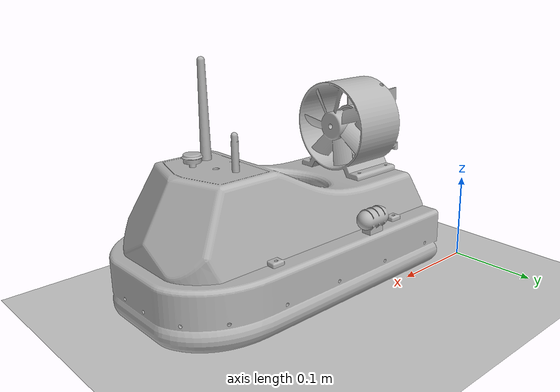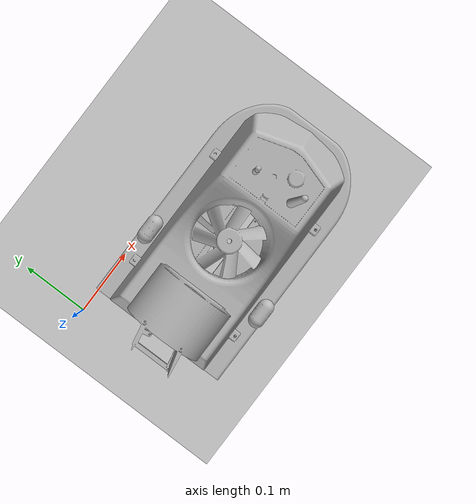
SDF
<sdf version='1.7'>
    <world name='default'>
        <light name='sun' type='directional'>
        <cast_shadows>1</cast_shadows>
        <pose>0 0 10 0 -0 0</pose>
        <diffuse>0.8 0.8 0.8 1</diffuse>
        <specular>0.2 0.2 0.2 1</specular>
        <attenuation>
            <range>1000</range>
            <constant>0.9</constant>
            <linear>0.01</linear>
            <quadratic>0.001</quadratic>
        </attenuation>
        <direction>-0.5 0.1 -0.9</direction>
        <spot>
            <inner_angle>0</inner_angle>
            <outer_angle>0</outer_angle>
            <falloff>0</falloff>
        </spot>
        </light>

        <model name='ground_plane'>
        <static>1</static>
        <link name='link'>
            <collision name='collision'>
            <geometry>
                <plane>
                <normal>0 0 1</normal>
                <size>100 100</size>
                </plane>
            </geometry>
            <surface>
                <contact>
                <collide_bitmask>65535</collide_bitmask>
                <ode/>
                </contact>
                <friction>
                <ode>
                    <mu>100</mu>
                    <mu2>50</mu2>
                </ode>
                <torsional>
                    <ode/>
                </torsional>
                </friction>
                <bounce/>
            </surface>
            <max_contacts>10</max_contacts>
            </collision>
            <visual name='visual'>
            <cast_shadows>0</cast_shadows>
            <geometry>
                <plane>
                <normal>0 0 1</normal>
                <size>100 100</size>
                </plane>
            </geometry>
            <material>
                <script>
                <uri>file://media/materials/scripts/gazebo.material</uri>
                <name>Gazebo/Grey</name>
                </script>
            </material>
            </visual>
            <self_collide>0</self_collide>
            <enable_wind>0</enable_wind>
            <kinematic>0</kinematic>
        </link>
        </model>

        <include>
            <uri>model://hovercraft</uri>
            <!-- Pose ( x y z r p y ) -->
            <pose frame=''>0 0 0 0 0 0</pose>
        </include>
    </world>
</sdf>

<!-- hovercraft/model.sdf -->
<sdf version='1.6'>
  <model name='hovercraft'>
    <link name='link_0'>
      <inertial>
        <mass>1</mass>
        <inertia>
          <ixx>0.166667</ixx>
          <ixy>0</ixy>
          <ixz>0</ixz>
          <iyy>0.166667</iyy>
          <iyz>0</iyz>
          <izz>0.166667</izz>
        </inertia>
      </inertial>
      <pose frame=''>0 0 0 0 -0 0</pose>
      <visual name='visual'>
        <pose frame=''>0 0 0 0 -0 0</pose>
        <geometry>
          <mesh>
            <uri>model://hovercraft/meshes/hovercraft.obj</uri>
            <scale>0.0012 0.0012 0.0012</scale>
          </mesh>
        </geometry>
        <transparency>0</transparency>
        <cast_shadows>1</cast_shadows>
      </visual>
      <collision name='collision'>
        <laser_retro>0</laser_retro>
        <max_contacts>10</max_contacts>
        <pose frame=''>0 0 0 0 -0 0</pose>
        <geometry>
          <mesh>
            <uri>model://hovercraft/meshes/hovercraft.obj</uri>
            <scale>0.0012 0.0012 0.0012</scale>
          </mesh>
        </geometry>
      </collision>
    </link>
    <static>1</static>
    <allow_auto_disable>1</allow_auto_disable>
  </model>
</sdf>
